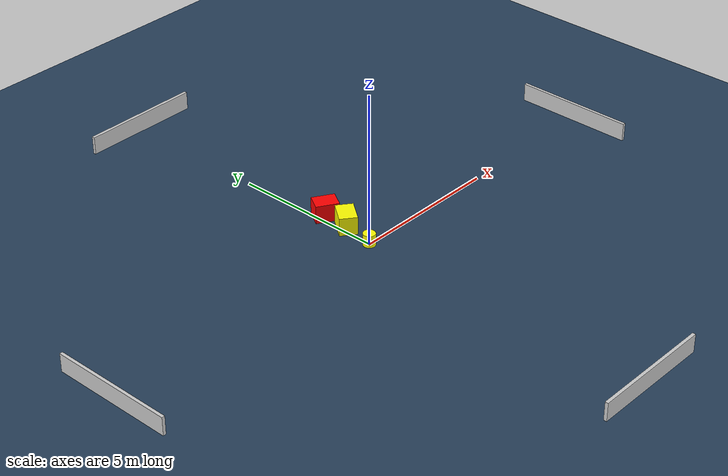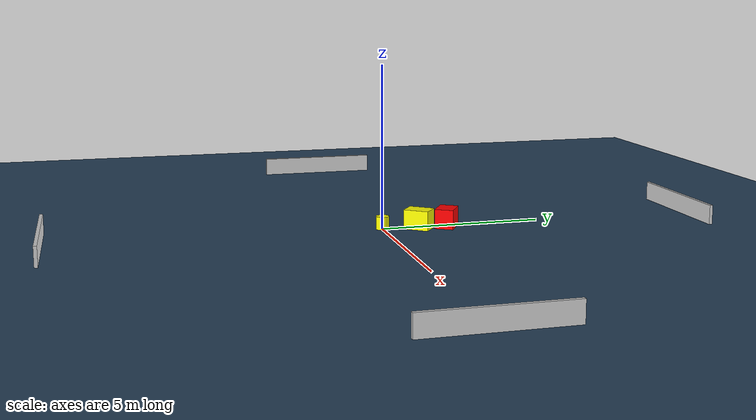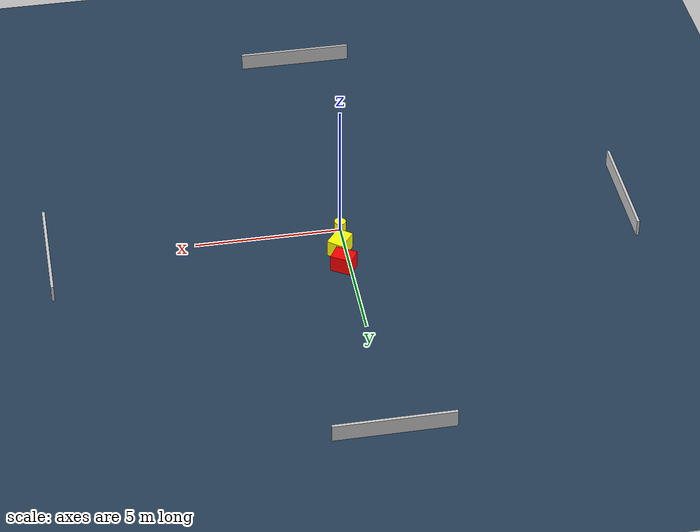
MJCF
<?xml version="1.0" ?>
<mujoco model="generated_environment">
  <option timestep="0.01" integrator="RK4" cone="elliptic"/>
  <default>
    <geom density="1"/>
  </default>
  <asset>
    <texture builtin="gradient" height="3072" name="skybox" rgb1="0.3 0.5 0.7" rgb2="0 0 0" type="skybox" width="512"/>
    <texture builtin="checker" height="300" name="groundplane" rgb1="0.2 0.3 0.4" rgb2="0.1 0.2 0.3" type="2d" width="300"/>
    <material name="groundplane" reflectance="0.2" texrepeat="5 5" texture="groundplane"/>
  </asset>
  <worldbody>
    <light dir="0 0 -1" directional="true" pos="0 0 1.5"/>
    <geom condim="3" friction="0.5 0.005 0.001" material="groundplane" name="floor" pos="0 0 0" size="0 0 0.05" type="plane"/>
    <body name="walls">
      <geom name="wall_1" condim="4" pos="-10.0 0.0 0.3" rgba="0.800000011920929 0.800000011920929 0.800000011920929 1.0" size="0.05 2.0 0.3" type="box"/>
      <geom name="wall_2" condim="4" pos="10.0 0.0 0.3" rgba="0.800000011920929 0.800000011920929 0.800000011920929 1.0" size="0.05 2.0 0.3" type="box"/>
      <geom name="wall_3" condim="4" pos="0.0 -10.0 0.3" rgba="0.800000011920929 0.800000011920929 0.800000011920929 1.0" size="2.0 0.05 0.3" type="box"/>
      <geom name="wall_4" condim="4" pos="0.0 10.0 0.3" rgba="0.800000011920929 0.800000011920929 0.800000011920929 1.0" size="2.0 0.05 0.3" type="box"/>
    </body>
    <body name="robot">
      <joint name="joint_x" type="slide" pos="0 0 0" axis="1 0 0"/>
      <joint name="joint_y" type="slide" pos="0 0 0" axis="0 1 0"/>
      <geom name="robot" type="cylinder" pos="0.0 0.0 0.2" size="0.2 0.2 0.0" mass="5.0" friction="1.0 0.005 0.0001" condim="4" rgba="1.0 1.0 0.0 1.0"/>
    </body>
    <body name="obstacle_1_movable">
      <geom name="obstacle_1_movable" condim="4" pos="0.19300217411411105 1.0992349903959386 0.3" euler="0 0 52.56997568197852" friction="0.0 0.005 0.001" rgba="1.0 1.0 0.0 1.0" size="0.3945202971850901 0.28589685933904585 0.3" type="box" mass="0.1"/>
      <joint type="free"/>
    </body>
    <body name="obstacle_2_static">
      <geom name="obstacle_2_static" condim="4" pos="0.21375362068299494 1.9787971156442048 0.3" euler="0 0 328.8923674612807" friction="0.0 0.005 0.001" rgba="1.0 0.0 0.0 1.0" size="0.3732085735202071 0.283634386427178 0.3" type="box"/>
    </body>
  </worldbody>
  <actuator>
    <motor name="actuator_x" joint="joint_x" gear="1" ctrlrange="-1 1"/>
    <motor name="actuator_y" joint="joint_y" gear="1" ctrlrange="-1 1"/>
  </actuator>
</mujoco>
